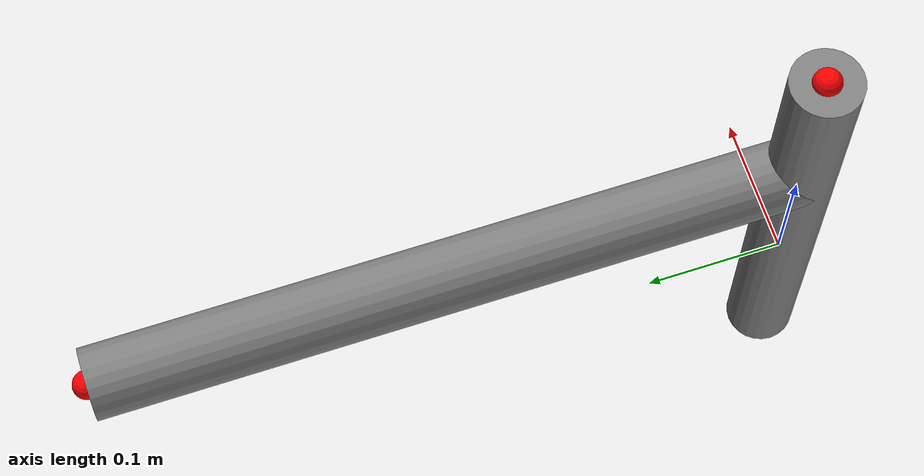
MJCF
<mujoco model="TBlock">
  <custom>
    <numeric name="estimator_configuration_length" data="32" />
  </custom>
  <option timestep="0.005" gravity="0 0 0">
    <flag contact="disable"/>
  </option>
  <visual>
    <headlight ambient=".4 .4 .4" diffuse=".8 .8 .8" specular="0.1 0.1 0.1"/>
    <map znear=".01"/>
    <quality shadowsize="2048"/>
  </visual>

  <worldbody>
    <light name="light" pos="0 0 1"/>
    <camera name="fixed" pos="0 0 .5" quat="1 0 0 0"/>
    <body name="body" pos="0 0 0">
      <joint type="ball" damping="0.01"/>
      <geom name="cylinder0" type="cylinder" fromto="0 0 -.125 0 0 0.25" size="0.025" mass="1.0"/>
      <site name="tip0" pos="0 0 -0.125" rgba="1 0 0 1" type="sphere" size="0.01" />
      <site name="tip1" pos="0 0 0.25" rgba="1 0 0 1" type="sphere" size="0.01" />
      <geom name="cylinder1" type="cylinder" fromto="0 0 0.125 0 0.5 0.125" size="0.025" mass="10.0"/>
      <site name="tip2" pos="0 0.5 0.125" rgba="1 0 0 1" type="sphere" size="0.01" />
    </body>
  </worldbody>

  <sensor>
    <framepos name="tip0" objtype="site" objname="tip0" />
    <framepos name="tip1" objtype="site" objname="tip1" />
    <framepos name="tip2" objtype="site" objname="tip2" />
  </sensor>
</mujoco>
